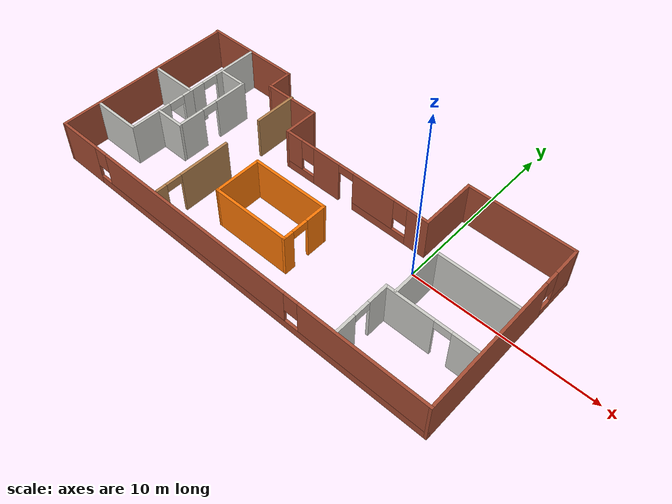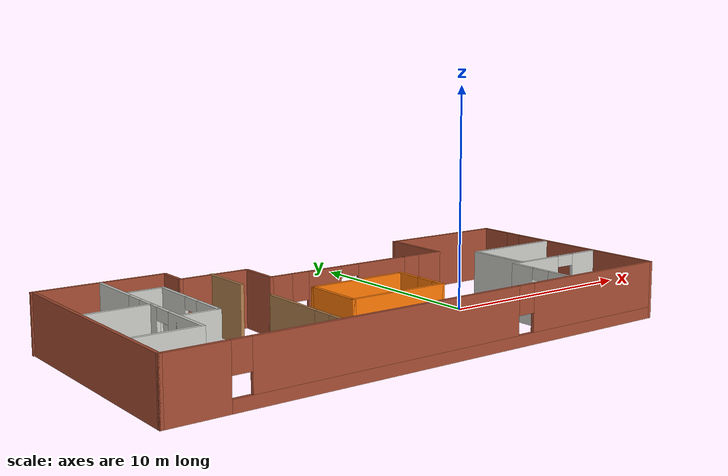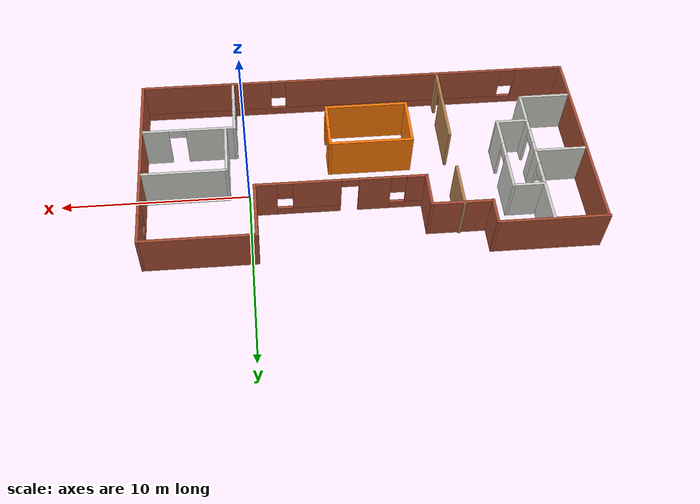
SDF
<?xml version='1.0'?>
<sdf version='1.6'>
  <model name='Building'>
    <pose frame=''>-6.15049 -0.832939 0 0 -0 0</pose>
    <link name='Wall_1'>
      <collision name='Wall_1_Collision'>
        <geometry>
          <box>
            <size>10.5 0.15 2.5</size>
          </box>
        </geometry>
        <pose frame=''>0 0 1.25 0 -0 0</pose>
      </collision>
      <visual name='Wall_1_Visual'>
        <pose frame=''>0 0 1.25 0 -0 0</pose>
        <geometry>
          <box>
            <size>10.5 0.15 2.5</size>
          </box>
        </geometry>
        <material>
          <script>
            <uri>file://media/materials/scripts/gazebo.material</uri>
            <name>Gazebo/Bricks</name>
          </script>
          <ambient>1 1 1 1</ambient>
        </material>
        <meta>
          <layer>0</layer>
        </meta>
      </visual>
      <pose frame=''>-11.65 -0.05 0 0 0 -1.5708</pose>
    </link>
    <link name='Wall_10'>
      <collision name='Wall_10_Collision'>
        <geometry>
          <box>
            <size>3.25 0.15 2.5</size>
          </box>
        </geometry>
        <pose frame=''>0 0 1.25 0 -0 0</pose>
      </collision>
      <visual name='Wall_10_Visual'>
        <pose frame=''>0 0 1.25 0 -0 0</pose>
        <geometry>
          <box>
            <size>3.25 0.15 2.5</size>
          </box>
        </geometry>
        <material>
          <script>
            <uri>file://media/materials/scripts/gazebo.material</uri>
            <name>Gazebo/Bricks</name>
          </script>
          <ambient>1 1 1 1</ambient>
        </material>
        <meta>
          <layer>0</layer>
        </meta>
      </visual>
      <pose frame=''>-4.55 3.875 0 0 -0 3.14159</pose>
    </link>
    <link name='Wall_11'>
      <collision name='Wall_11_Collision'>
        <geometry>
          <box>
            <size>1.5 0.15 2.5</size>
          </box>
        </geometry>
        <pose frame=''>0 0 1.25 0 -0 0</pose>
      </collision>
      <visual name='Wall_11_Visual'>
        <pose frame=''>0 0 1.25 0 -0 0</pose>
        <geometry>
          <box>
            <size>1.5 0.15 2.5</size>
          </box>
        </geometry>
        <material>
          <script>
            <uri>file://media/materials/scripts/gazebo.material</uri>
            <name>Gazebo/Bricks</name>
          </script>
          <ambient>1 1 1 1</ambient>
        </material>
        <meta>
          <layer>0</layer>
        </meta>
      </visual>
      <pose frame=''>-6.1 4.55 0 0 -0 1.5708</pose>
    </link>
    <link name='Wall_14'>
      <collision name='Wall_14_Collision'>
        <geometry>
          <box>
            <size>5.75 0.15 2.5</size>
          </box>
        </geometry>
        <pose frame=''>0 0 1.25 0 -0 0</pose>
      </collision>
      <visual name='Wall_14_Visual'>
        <pose frame=''>0 0 1.25 0 -0 0</pose>
        <geometry>
          <box>
            <size>5.75 0.15 2.5</size>
          </box>
        </geometry>
        <material>
          <script>
            <uri>file://media/materials/scripts/gazebo.material</uri>
            <name>Gazebo/Bricks</name>
          </script>
          <ambient>1 1 1 1</ambient>
        </material>
        <meta>
          <layer>0</layer>
        </meta>
      </visual>
      <pose frame=''>-8.9 5.225 0 0 -0 3.14159</pose>
    </link>
    <link name='Wall_16'>
      <pose frame=''>6.75486 -3.54398 0 0 -0 1.5708</pose>
      <visual name='Wall_16_Visual_0'>
        <pose frame=''>-1.06347 0 1.25 0 -0 0</pose>
        <geometry>
          <box>
            <size>1.12307 0.15 2.5</size>
          </box>
        </geometry>
        <material>
          <script>
            <uri>file://media/materials/scripts/gazebo.material</uri>
            <name>Gazebo/CeilingTiled</name>
          </script>
          <ambient>1 0.764706 0.305882 1</ambient>
        </material>
        <meta>
          <layer>0</layer>
        </meta>
      </visual>
      <collision name='Wall_16_Collision_0'>
        <geometry>
          <box>
            <size>1.12307 0.15 2.5</size>
          </box>
        </geometry>
        <pose frame=''>-1.06347 0 1.25 0 -0 0</pose>
      </collision>
      <visual name='Wall_16_Visual_1'>
        <pose frame=''>1.01154 0 1.25 0 -0 0</pose>
        <geometry>
          <box>
            <size>1.22693 0.15 2.5</size>
          </box>
        </geometry>
        <material>
          <script>
            <uri>file://media/materials/scripts/gazebo.material</uri>
            <name>Gazebo/CeilingTiled</name>
          </script>
          <ambient>1 0.764706 0.305882 1</ambient>
        </material>
        <meta>
          <layer>0</layer>
        </meta>
      </visual>
      <collision name='Wall_16_Collision_1'>
        <geometry>
          <box>
            <size>1.22693 0.15 2.5</size>
          </box>
        </geometry>
        <pose frame=''>1.01154 0 1.25 0 -0 0</pose>
      </collision>
      <visual name='Wall_16_Visual_2'>
        <pose frame=''>-0.05193 0 2.25 0 -0 0</pose>
        <geometry>
          <box>
            <size>0.9 0.15 0.5</size>
          </box>
        </geometry>
        <material>
          <script>
            <uri>file://media/materials/scripts/gazebo.material</uri>
            <name>Gazebo/CeilingTiled</name>
          </script>
          <ambient>1 0.764706 0.305882 1</ambient>
        </material>
        <meta>
          <layer>0</layer>
        </meta>
      </visual>
      <collision name='Wall_16_Collision_2'>
        <geometry>
          <box>
            <size>0.9 0.15 0.5</size>
          </box>
        </geometry>
        <pose frame=''>-0.05193 0 2.25 0 -0 0</pose>
      </collision>
    </link>
    <link name='Wall_17'>
      <pose frame=''>9.17986 -1.99398 0 0 -0 0</pose>
      <visual name='Wall_17_Visual_0'>
        <pose frame=''>-1.16268 0 1.25 0 -0 0</pose>
        <geometry>
          <box>
            <size>2.67464 0.15 2.5</size>
          </box>
        </geometry>
        <material>
          <script>
            <uri>file://media/materials/scripts/gazebo.material</uri>
            <name>Gazebo/CeilingTiled</name>
          </script>
          <ambient>1 0.764706 0.305882 1</ambient>
        </material>
        <meta>
          <layer>0</layer>
        </meta>
      </visual>
      <collision name='Wall_17_Collision_0'>
        <geometry>
          <box>
            <size>2.67464 0.15 2.5</size>
          </box>
        </geometry>
        <pose frame=''>-1.16268 0 1.25 0 -0 0</pose>
      </collision>
      <visual name='Wall_17_Visual_1'>
        <pose frame=''>1.78732 0 1.25 0 -0 0</pose>
        <geometry>
          <box>
            <size>1.42536 0.15 2.5</size>
          </box>
        </geometry>
        <material>
          <script>
            <uri>file://media/materials/scripts/gazebo.material</uri>
            <name>Gazebo/CeilingTiled</name>
          </script>
          <ambient>1 0.764706 0.305882 1</ambient>
        </material>
        <meta>
          <layer>0</layer>
        </meta>
      </visual>
      <collision name='Wall_17_Collision_1'>
        <geometry>
          <box>
            <size>1.42536 0.15 2.5</size>
          </box>
        </geometry>
        <pose frame=''>1.78732 0 1.25 0 -0 0</pose>
      </collision>
      <visual name='Wall_17_Visual_2'>
        <pose frame=''>0.624643 0 2.25 0 -0 0</pose>
        <geometry>
          <box>
            <size>0.9 0.15 0.5</size>
          </box>
        </geometry>
        <material>
          <script>
            <uri>file://media/materials/scripts/gazebo.material</uri>
            <name>Gazebo/CeilingTiled</name>
          </script>
          <ambient>1 0.764706 0.305882 1</ambient>
        </material>
        <meta>
          <layer>0</layer>
        </meta>
      </visual>
      <collision name='Wall_17_Collision_2'>
        <geometry>
          <box>
            <size>0.9 0.15 0.5</size>
          </box>
        </geometry>
        <pose frame=''>0.624643 0 2.25 0 -0 0</pose>
      </collision>
    </link>
    <link name='Wall_19'>
      <collision name='Wall_19_Collision'>
        <geometry>
          <box>
            <size>3 0.15 2.5</size>
          </box>
        </geometry>
        <pose frame=''>0 0 1.25 0 -0 0</pose>
      </collision>
      <visual name='Wall_19_Visual'>
        <pose frame=''>0 0 1.25 0 -0 0</pose>
        <geometry>
          <box>
            <size>3 0.15 2.5</size>
          </box>
        </geometry>
        <material>
          <script>
            <uri>file://media/materials/scripts/gazebo.material</uri>
            <name>Gazebo/CeilingTiled</name>
          </script>
          <ambient>1 0.764706 0.305882 1</ambient>
        </material>
        <meta>
          <layer>0</layer>
        </meta>
      </visual>
      <pose frame=''>7.23638 -0.51233 0 0 -0 1.5708</pose>
    </link>
    <link name='Wall_2'>
      <pose frame=''>0.025 -5.225 0 0 -0 0</pose>
      <visual name='Wall_2_Visual_0'>
        <pose frame=''>-10.4412 0 1.25 0 -0 0</pose>
        <geometry>
          <box>
            <size>2.61764 0.15 2.5</size>
          </box>
        </geometry>
        <material>
          <script>
            <uri>file://media/materials/scripts/gazebo.material</uri>
            <name>Gazebo/Bricks</name>
          </script>
          <ambient>1 1 1 1</ambient>
        </material>
        <meta>
          <layer>0</layer>
        </meta>
      </visual>
      <collision name='Wall_2_Collision_0'>
        <geometry>
          <box>
            <size>2.61764 0.15 2.5</size>
          </box>
        </geometry>
        <pose frame=''>-10.4412 0 1.25 0 -0 0</pose>
      </collision>
      <visual name='Wall_2_Visual_1'>
        <pose frame=''>1.30882 0 0.25 0 -0 0</pose>
        <geometry>
          <box>
            <size>20.8824 0.15 0.5</size>
          </box>
        </geometry>
        <material>
          <script>
            <uri>file://media/materials/scripts/gazebo.material</uri>
            <name>Gazebo/Bricks</name>
          </script>
          <ambient>1 1 1 1</ambient>
        </material>
        <meta>
          <layer>0</layer>
        </meta>
      </visual>
      <collision name='Wall_2_Collision_1'>
        <geometry>
          <box>
            <size>20.8824 0.15 0.5</size>
          </box>
        </geometry>
        <pose frame=''>1.30882 0 0.25 0 -0 0</pose>
      </collision>
      <visual name='Wall_2_Visual_2'>
        <pose frame=''>-2.25856 0 1.5 0 -0 0</pose>
        <geometry>
          <box>
            <size>12.1476 0.15 2</size>
          </box>
        </geometry>
        <material>
          <script>
            <uri>file://media/materials/scripts/gazebo.material</uri>
            <name>Gazebo/Bricks</name>
          </script>
          <ambient>1 1 1 1</ambient>
        </material>
        <meta>
          <layer>0</layer>
        </meta>
      </visual>
      <collision name='Wall_2_Collision_2'>
        <geometry>
          <box>
            <size>12.1476 0.15 2</size>
          </box>
        </geometry>
        <pose frame=''>-2.25856 0 1.5 0 -0 0</pose>
      </collision>
      <visual name='Wall_2_Visual_3'>
        <pose frame=''>8.18262 0 1.5 0 -0 0</pose>
        <geometry>
          <box>
            <size>7.13476 0.15 2</size>
          </box>
        </geometry>
        <material>
          <script>
            <uri>file://media/materials/scripts/gazebo.material</uri>
            <name>Gazebo/Bricks</name>
          </script>
          <ambient>1 1 1 1</ambient>
        </material>
        <meta>
          <layer>0</layer>
        </meta>
      </visual>
      <collision name='Wall_2_Collision_3'>
        <geometry>
          <box>
            <size>7.13476 0.15 2</size>
          </box>
        </geometry>
        <pose frame=''>8.18262 0 1.5 0 -0 0</pose>
      </collision>
      <visual name='Wall_2_Visual_4'>
        <pose frame=''>-8.73236 0 1.9 0 -0 0</pose>
        <geometry>
          <box>
            <size>0.8 0.15 1.2</size>
          </box>
        </geometry>
        <material>
          <script>
            <uri>file://media/materials/scripts/gazebo.material</uri>
            <name>Gazebo/Bricks</name>
          </script>
          <ambient>1 1 1 1</ambient>
        </material>
        <meta>
          <layer>0</layer>
        </meta>
      </visual>
      <collision name='Wall_2_Collision_4'>
        <geometry>
          <box>
            <size>0.8 0.15 1.2</size>
          </box>
        </geometry>
        <pose frame=''>-8.73236 0 1.9 0 -0 0</pose>
      </collision>
      <visual name='Wall_2_Visual_5'>
        <pose frame=''>4.21524 0 1.9 0 -0 0</pose>
        <geometry>
          <box>
            <size>0.8 0.15 1.2</size>
          </box>
        </geometry>
        <material>
          <script>
            <uri>file://media/materials/scripts/gazebo.material</uri>
            <name>Gazebo/Bricks</name>
          </script>
          <ambient>1 1 1 1</ambient>
        </material>
        <meta>
          <layer>0</layer>
        </meta>
      </visual>
      <collision name='Wall_2_Collision_5'>
        <geometry>
          <box>
            <size>0.8 0.15 1.2</size>
          </box>
        </geometry>
        <pose frame=''>4.21524 0 1.9 0 -0 0</pose>
      </collision>
    </link>
    <link name='Wall_20'>
      <collision name='Wall_20_Collision'>
        <geometry>
          <box>
            <size>4.5 0.15 2.5</size>
          </box>
        </geometry>
        <pose frame=''>0 0 1.25 0 -0 0</pose>
      </collision>
      <visual name='Wall_20_Visual'>
        <pose frame=''>0 0 1.25 0 -0 0</pose>
        <geometry>
          <box>
            <size>4.5 0.15 2.5</size>
          </box>
        </geometry>
        <material>
          <script>
            <uri>file://media/materials/scripts/gazebo.material</uri>
            <name>Gazebo/CeilingTiled</name>
          </script>
          <ambient>1 0.764706 0.305882 1</ambient>
        </material>
        <meta>
          <layer>0</layer>
        </meta>
      </visual>
      <pose frame=''>9.41138 0.91267 0 0 -0 0</pose>
    </link>
    <link name='Wall_23'>
      <pose frame=''>-8.92137 2.95 0 0 0 -1.5708</pose>
      <visual name='Wall_23_Visual_0'>
        <pose frame=''>-0.912679 0 1.25 0 -0 0</pose>
        <geometry>
          <box>
            <size>2.67464 0.15 2.5</size>
          </box>
        </geometry>
        <material>
          <script>
            <uri>file://media/materials/scripts/gazebo.material</uri>
            <name>Gazebo/CeilingTiled</name>
          </script>
          <ambient>0.435294 0.796078 0.67451 1</ambient>
        </material>
        <meta>
          <layer>0</layer>
        </meta>
      </visual>
      <collision name='Wall_23_Collision_0'>
        <geometry>
          <box>
            <size>2.67464 0.15 2.5</size>
          </box>
        </geometry>
        <pose frame=''>-0.912679 0 1.25 0 -0 0</pose>
      </collision>
      <visual name='Wall_23_Visual_1'>
        <pose frame=''>1.78732 0 1.25 0 -0 0</pose>
        <geometry>
          <box>
            <size>0.925357 0.15 2.5</size>
          </box>
        </geometry>
        <material>
          <script>
            <uri>file://media/materials/scripts/gazebo.material</uri>
            <name>Gazebo/CeilingTiled</name>
          </script>
          <ambient>0.435294 0.796078 0.67451 1</ambient>
        </material>
        <meta>
          <layer>0</layer>
        </meta>
      </visual>
      <collision name='Wall_23_Collision_1'>
        <geometry>
          <box>
            <size>0.925357 0.15 2.5</size>
          </box>
        </geometry>
        <pose frame=''>1.78732 0 1.25 0 -0 0</pose>
      </collision>
      <visual name='Wall_23_Visual_2'>
        <pose frame=''>0.874643 0 2.25 0 -0 0</pose>
        <geometry>
          <box>
            <size>0.9 0.15 0.5</size>
          </box>
        </geometry>
        <material>
          <script>
            <uri>file://media/materials/scripts/gazebo.material</uri>
            <name>Gazebo/CeilingTiled</name>
          </script>
          <ambient>0.435294 0.796078 0.67451 1</ambient>
        </material>
        <meta>
          <layer>0</layer>
        </meta>
      </visual>
      <collision name='Wall_23_Collision_2'>
        <geometry>
          <box>
            <size>0.9 0.15 0.5</size>
          </box>
        </geometry>
        <pose frame=''>0.874643 0 2.25 0 -0 0</pose>
      </collision>
    </link>
    <link name='Wall_24'>
      <collision name='Wall_24_Collision'>
        <geometry>
          <box>
            <size>2.75 0.15 2.5</size>
          </box>
        </geometry>
        <pose frame=''>0 0 1.25 0 -0 0</pose>
      </collision>
      <visual name='Wall_24_Visual'>
        <pose frame=''>0 0 1.25 0 -0 0</pose>
        <geometry>
          <box>
            <size>2.75 0.15 2.5</size>
          </box>
        </geometry>
        <material>
          <script>
            <uri>file://media/materials/scripts/gazebo.material</uri>
            <name>Gazebo/CeilingTiled</name>
          </script>
          <ambient>0.435294 0.796078 0.67451 1</ambient>
        </material>
        <meta>
          <layer>0</layer>
        </meta>
      </visual>
      <pose frame=''>-10.2214 0.775 0 0 -0 3.14159</pose>
    </link>
    <link name='Wall_26'>
      <pose frame=''>-8.92137 -1.15 0 0 0 -1.5708</pose>
      <visual name='Wall_26_Visual_0'>
        <pose frame=''>-1.68738 0 1.25 0 -0 0</pose>
        <geometry>
          <box>
            <size>0.62525 0.15 2.5</size>
          </box>
        </geometry>
        <material>
          <script>
            <uri>file://media/materials/scripts/gazebo.material</uri>
            <name>Gazebo/CeilingTiled</name>
          </script>
          <ambient>0.435294 0.796078 0.67451 1</ambient>
        </material>
        <meta>
          <layer>0</layer>
        </meta>
      </visual>
      <collision name='Wall_26_Collision_0'>
        <geometry>
          <box>
            <size>0.62525 0.15 2.5</size>
          </box>
        </geometry>
        <pose frame=''>-1.68738 0 1.25 0 -0 0</pose>
      </collision>
      <visual name='Wall_26_Visual_1'>
        <pose frame=''>0.762625 0 1.25 0 -0 0</pose>
        <geometry>
          <box>
            <size>2.47475 0.15 2.5</size>
          </box>
        </geometry>
        <material>
          <script>
            <uri>file://media/materials/scripts/gazebo.material</uri>
            <name>Gazebo/CeilingTiled</name>
          </script>
          <ambient>0.435294 0.796078 0.67451 1</ambient>
        </material>
        <meta>
          <layer>0</layer>
        </meta>
      </visual>
      <collision name='Wall_26_Collision_1'>
        <geometry>
          <box>
            <size>2.47475 0.15 2.5</size>
          </box>
        </geometry>
        <pose frame=''>0.762625 0 1.25 0 -0 0</pose>
      </collision>
      <visual name='Wall_26_Visual_2'>
        <pose frame=''>-0.92475 0 2.25 0 -0 0</pose>
        <geometry>
          <box>
            <size>0.9 0.15 0.5</size>
          </box>
        </geometry>
        <material>
          <script>
            <uri>file://media/materials/scripts/gazebo.material</uri>
            <name>Gazebo/CeilingTiled</name>
          </script>
          <ambient>0.435294 0.796078 0.67451 1</ambient>
        </material>
        <meta>
          <layer>0</layer>
        </meta>
      </visual>
      <collision name='Wall_26_Collision_2'>
        <geometry>
          <box>
            <size>0.9 0.15 0.5</size>
          </box>
        </geometry>
        <pose frame=''>-0.92475 0 2.25 0 -0 0</pose>
      </collision>
    </link>
    <link name='Wall_27'>
      <collision name='Wall_27_Collision'>
        <geometry>
          <box>
            <size>2.75 0.15 2.5</size>
          </box>
        </geometry>
        <pose frame=''>0 0 1.25 0 -0 0</pose>
      </collision>
      <visual name='Wall_27_Visual'>
        <pose frame=''>0 0 1.25 0 -0 0</pose>
        <geometry>
          <box>
            <size>2.75 0.15 2.5</size>
          </box>
        </geometry>
        <material>
          <script>
            <uri>file://media/materials/scripts/gazebo.material</uri>
            <name>Gazebo/CeilingTiled</name>
          </script>
          <ambient>0.435294 0.796078 0.67451 1</ambient>
        </material>
        <meta>
          <layer>0</layer>
        </meta>
      </visual>
      <pose frame=''>-10.2214 -3.075 0 0 -0 3.14159</pose>
    </link>
    <link name='Wall_29'>
      <collision name='Wall_29_Collision'>
        <geometry>
          <box>
            <size>1.75 0.15 2.5</size>
          </box>
        </geometry>
        <pose frame=''>0 0 1.25 0 -0 0</pose>
      </collision>
      <visual name='Wall_29_Visual'>
        <pose frame=''>0 0 1.25 0 -0 0</pose>
        <geometry>
          <box>
            <size>1.75 0.15 2.5</size>
          </box>
        </geometry>
        <material>
          <script>
            <uri>file://media/materials/scripts/gazebo.material</uri>
            <name>Gazebo/CeilingTiled</name>
          </script>
          <ambient>0.435294 0.796078 0.67451 1</ambient>
        </material>
        <meta>
          <layer>0</layer>
        </meta>
      </visual>
      <pose frame=''>-8.12137 2.9849 0 0 -0 0</pose>
    </link>
    <link name='Wall_3'>
      <pose frame=''>11.7 -0.05 0 0 -0 1.5708</pose>
      <visual name='Wall_3_Visual_0'>
        <pose frame=''>-1.2273 0 1.25 0 -0 0</pose>
        <geometry>
          <box>
            <size>8.04541 0.15 2.5</size>
          </box>
        </geometry>
        <material>
          <script>
            <uri>file://media/materials/scripts/gazebo.material</uri>
            <name>Gazebo/Bricks</name>
          </script>
          <ambient>1 1 1 1</ambient>
        </material>
        <meta>
          <layer>0</layer>
        </meta>
      </visual>
      <collision name='Wall_3_Collision_0'>
        <geometry>
          <box>
            <size>8.04541 0.15 2.5</size>
          </box>
        </geometry>
        <pose frame=''>-1.2273 0 1.25 0 -0 0</pose>
      </collision>
      <visual name='Wall_3_Visual_1'>
        <pose frame=''>4.0227 0 0.25 0 -0 0</pose>
        <geometry>
          <box>
            <size>2.45459 0.15 0.5</size>
          </box>
        </geometry>
        <material>
          <script>
            <uri>file://media/materials/scripts/gazebo.material</uri>
            <name>Gazebo/Bricks</name>
          </script>
          <ambient>1 1 1 1</ambient>
        </material>
        <meta>
          <layer>0</layer>
        </meta>
      </visual>
      <collision name='Wall_3_Collision_1'>
        <geometry>
          <box>
            <size>2.45459 0.15 0.5</size>
          </box>
        </geometry>
        <pose frame=''>4.0227 0 0.25 0 -0 0</pose>
      </collision>
      <visual name='Wall_3_Visual_2'>
        <pose frame=''>4.4227 0 1.5 0 -0 0</pose>
        <geometry>
          <box>
            <size>1.65459 0.15 2</size>
          </box>
        </geometry>
        <material>
          <script>
            <uri>file://media/materials/scripts/gazebo.material</uri>
            <name>Gazebo/Bricks</name>
          </script>
          <ambient>1 1 1 1</ambient>
        </material>
        <meta>
          <layer>0</layer>
        </meta>
      </visual>
      <collision name='Wall_3_Collision_2'>
        <geometry>
          <box>
            <size>1.65459 0.15 2</size>
          </box>
        </geometry>
        <pose frame=''>4.4227 0 1.5 0 -0 0</pose>
      </collision>
      <visual name='Wall_3_Visual_3'>
        <pose frame=''>3.19541 0 1.9 0 -0 0</pose>
        <geometry>
          <box>
            <size>0.8 0.15 1.2</size>
          </box>
        </geometry>
        <material>
          <script>
            <uri>file://media/materials/scripts/gazebo.material</uri>
            <name>Gazebo/Bricks</name>
          </script>
          <ambient>1 1 1 1</ambient>
        </material>
        <meta>
          <layer>0</layer>
        </meta>
      </visual>
      <collision name='Wall_3_Collision_3'>
        <geometry>
          <box>
            <size>0.8 0.15 1.2</size>
          </box>
        </geometry>
        <pose frame=''>3.19541 0 1.9 0 -0 0</pose>
      </collision>
    </link>
    <link name='Wall_30'>
      <pose frame=''>-7.32137 0.8099 0 0 0 -1.5708</pose>
      <visual name='Wall_30_Visual_0'>
        <pose frame=''>-1.26045 0 1.25 0 -0 0</pose>
        <geometry>
          <box>
            <size>1.97911 0.15 2.5</size>
          </box>
        </geometry>
        <material>
          <script>
            <uri>file://media/materials/scripts/gazebo.material</uri>
            <name>Gazebo/CeilingTiled</name>
          </script>
          <ambient>0.435294 0.796078 0.67451 1</ambient>
        </material>
        <meta>
          <layer>0</layer>
        </meta>
      </visual>
      <collision name='Wall_30_Collision_0'>
        <geometry>
          <box>
            <size>1.97911 0.15 2.5</size>
          </box>
        </geometry>
        <pose frame=''>-1.26045 0 1.25 0 -0 0</pose>
      </collision>
      <visual name='Wall_30_Visual_1'>
        <pose frame=''>1.43955 0 1.25 0 -0 0</pose>
        <geometry>
          <box>
            <size>1.62089 0.15 2.5</size>
          </box>
        </geometry>
        <material>
          <script>
            <uri>file://media/materials/scripts/gazebo.material</uri>
            <name>Gazebo/CeilingTiled</name>
          </script>
          <ambient>0.435294 0.796078 0.67451 1</ambient>
        </material>
        <meta>
          <layer>0</layer>
        </meta>
      </visual>
      <collision name='Wall_30_Collision_1'>
        <geometry>
          <box>
            <size>1.62089 0.15 2.5</size>
          </box>
        </geometry>
        <pose frame=''>1.43955 0 1.25 0 -0 0</pose>
      </collision>
      <visual name='Wall_30_Visual_2'>
        <pose frame=''>0.17911 0 2.25 0 -0 0</pose>
        <geometry>
          <box>
            <size>0.9 0.15 0.5</size>
          </box>
        </geometry>
        <material>
          <script>
            <uri>file://media/materials/scripts/gazebo.material</uri>
            <name>Gazebo/CeilingTiled</name>
          </script>
          <ambient>0.435294 0.796078 0.67451 1</ambient>
        </material>
        <meta>
          <layer>0</layer>
        </meta>
      </visual>
      <collision name='Wall_30_Collision_2'>
        <geometry>
          <box>
            <size>0.9 0.15 0.5</size>
          </box>
        </geometry>
        <pose frame=''>0.17911 0 2.25 0 -0 0</pose>
      </collision>
    </link>
    <link name='Wall_35'>
      <collision name='Wall_35_Collision'>
        <geometry>
          <box>
            <size>1.75 0.15 2.5</size>
          </box>
        </geometry>
        <pose frame=''>0 0 1.25 0 -0 0</pose>
      </collision>
      <visual name='Wall_35_Visual'>
        <pose frame=''>0 0 1.25 0 -0 0</pose>
        <geometry>
          <box>
            <size>1.75 0.15 2.5</size>
          </box>
        </geometry>
        <material>
          <script>
            <uri>file://media/materials/scripts/gazebo.material</uri>
            <name>Gazebo/CeilingTiled</name>
          </script>
          <ambient>0.435294 0.796078 0.67451 1</ambient>
        </material>
        <meta>
          <layer>0</layer>
        </meta>
      </visual>
      <pose frame=''>-8.12137 -1.3651 0 0 -0 3.14159</pose>
    </link>
    <link name='Wall_38'>
      <collision name='Wall_38_Collision'>
        <geometry>
          <box>
            <size>2.75 0.15 2.5</size>
          </box>
        </geometry>
        <pose frame=''>0 0 1.25 0 -0 0</pose>
      </collision>
      <visual name='Wall_38_Visual'>
        <pose frame=''>0 0 1.25 0 -0 0</pose>
        <geometry>
          <box>
            <size>2.75 0.15 2.5</size>
          </box>
        </geometry>
        <material>
          <script>
            <uri>file://media/materials/scripts/gazebo.material</uri>
            <name>Gazebo/Grey</name>
          </script>
          <ambient>0.996078 0.47451 0.0196078 1</ambient>
        </material>
        <meta>
          <layer>0</layer>
        </meta>
      </visual>
      <pose frame=''>-2.60851 -1.79306 0 0 0 -1.5708</pose>
    </link>
    <link name='Wall_39'>
      <collision name='Wall_39_Collision'>
        <geometry>
          <box>
            <size>4.5 0.15 2.5</size>
          </box>
        </geometry>
        <pose frame=''>0 0 1.25 0 -0 0</pose>
      </collision>
      <visual name='Wall_39_Visual'>
        <pose frame=''>0 0 1.25 0 -0 0</pose>
        <geometry>
          <box>
            <size>4.5 0.15 2.5</size>
          </box>
        </geometry>
        <material>
          <script>
            <uri>file://media/materials/scripts/gazebo.material</uri>
            <name>Gazebo/Grey</name>
          </script>
          <ambient>0.996078 0.47451 0.0196078 1</ambient>
        </material>
        <meta>
          <layer>0</layer>
        </meta>
      </visual>
      <pose frame=''>-0.433507 -3.09306 0 0 -0 0</pose>
    </link>
    <link name='Wall_40'>
      <pose frame=''>1.74149 -1.79306 0 0 -0 1.5708</pose>
      <visual name='Wall_40_Visual_0'>
        <pose frame=''>-1.06504 0 1.25 0 -0 0</pose>
        <geometry>
          <box>
            <size>0.619925 0.15 2.5</size>
          </box>
        </geometry>
        <material>
          <script>
            <uri>file://media/materials/scripts/gazebo.material</uri>
            <name>Gazebo/Grey</name>
          </script>
          <ambient>0.996078 0.47451 0.0196078 1</ambient>
        </material>
        <meta>
          <layer>0</layer>
        </meta>
      </visual>
      <collision name='Wall_40_Collision_0'>
        <geometry>
          <box>
            <size>0.619925 0.15 2.5</size>
          </box>
        </geometry>
        <pose frame=''>-1.06504 0 1.25 0 -0 0</pose>
      </collision>
      <visual name='Wall_40_Visual_1'>
        <pose frame=''>0.759962 0 1.25 0 -0 0</pose>
        <geometry>
          <box>
            <size>1.23008 0.15 2.5</size>
          </box>
        </geometry>
        <material>
          <script>
            <uri>file://media/materials/scripts/gazebo.material</uri>
            <name>Gazebo/Grey</name>
          </script>
          <ambient>0.996078 0.47451 0.0196078 1</ambient>
        </material>
        <meta>
          <layer>0</layer>
        </meta>
      </visual>
      <collision name='Wall_40_Collision_1'>
        <geometry>
          <box>
            <size>1.23008 0.15 2.5</size>
          </box>
        </geometry>
        <pose frame=''>0.759962 0 1.25 0 -0 0</pose>
      </collision>
      <visual name='Wall_40_Visual_2'>
        <pose frame=''>-0.305075 0 2.25 0 -0 0</pose>
        <geometry>
          <box>
            <size>0.9 0.15 0.5</size>
          </box>
        </geometry>
        <material>
          <script>
            <uri>file://media/materials/scripts/gazebo.material</uri>
            <name>Gazebo/Grey</name>
          </script>
          <ambient>0.996078 0.47451 0.0196078 1</ambient>
        </material>
        <meta>
          <layer>0</layer>
        </meta>
      </visual>
      <collision name='Wall_40_Collision_2'>
        <geometry>
          <box>
            <size>0.9 0.15 0.5</size>
          </box>
        </geometry>
        <pose frame=''>-0.305075 0 2.25 0 -0 0</pose>
      </collision>
    </link>
    <link name='Wall_41'>
      <collision name='Wall_41_Collision'>
        <geometry>
          <box>
            <size>4.5 0.15 2.5</size>
          </box>
        </geometry>
        <pose frame=''>0 0 1.25 0 -0 0</pose>
      </collision>
      <visual name='Wall_41_Visual'>
        <pose frame=''>0 0 1.25 0 -0 0</pose>
        <geometry>
          <box>
            <size>4.5 0.15 2.5</size>
          </box>
        </geometry>
        <material>
          <script>
            <uri>file://media/materials/scripts/gazebo.material</uri>
            <name>Gazebo/Grey</name>
          </script>
          <ambient>0.996078 0.47451 0.0196078 1</ambient>
        </material>
        <meta>
          <layer>0</layer>
        </meta>
      </visual>
      <pose frame=''>-0.433507 -0.493061 0 0 -0 3.14159</pose>
    </link>
    <link name='Wall_43'>
      <collision name='Wall_43_Collision'>
        <geometry>
          <box>
            <size>2.5 0.15 2.5</size>
          </box>
        </geometry>
        <pose frame=''>0 0 1.25 0 -0 0</pose>
      </collision>
      <visual name='Wall_43_Visual'>
        <pose frame=''>0 0 1.25 0 -0 0</pose>
        <geometry>
          <box>
            <size>2.5 0.15 2.5</size>
          </box>
        </geometry>
        <material>
          <script>
            <uri>file://media/materials/scripts/gazebo.material</uri>
            <name>Gazebo/Wood</name>
          </script>
          <ambient>1 1 1 1</ambient>
        </material>
        <meta>
          <layer>0</layer>
        </meta>
      </visual>
      <pose frame=''>-4.64117 2.77294 0 0 0 -1.5708</pose>
    </link>
    <link name='Wall_45'>
      <pose frame=''>-4.64117 -2.88177 0 0 0 -1.5708</pose>
      <visual name='Wall_45_Visual_0'>
        <pose frame=''>-0.752171 0 1.25 0 -0 0</pose>
        <geometry>
          <box>
            <size>2.99566 0.15 2.5</size>
          </box>
        </geometry>
        <material>
          <script>
            <uri>file://media/materials/scripts/gazebo.material</uri>
            <name>Gazebo/Wood</name>
          </script>
          <ambient>1 1 1 1</ambient>
        </material>
        <meta>
          <layer>0</layer>
        </meta>
      </visual>
      <collision name='Wall_45_Collision_0'>
        <geometry>
          <box>
            <size>2.99566 0.15 2.5</size>
          </box>
        </geometry>
        <pose frame=''>-0.752171 0 1.25 0 -0 0</pose>
      </collision>
      <visual name='Wall_45_Visual_1'>
        <pose frame=''>1.94783 0 1.25 0 -0 0</pose>
        <geometry>
          <box>
            <size>0.604343 0.15 2.5</size>
          </box>
        </geometry>
        <material>
          <script>
            <uri>file://media/materials/scripts/gazebo.material</uri>
            <name>Gazebo/Wood</name>
          </script>
          <ambient>1 1 1 1</ambient>
        </material>
        <meta>
          <layer>0</layer>
        </meta>
      </visual>
      <collision name='Wall_45_Collision_1'>
        <geometry>
          <box>
            <size>0.604343 0.15 2.5</size>
          </box>
        </geometry>
        <pose frame=''>1.94783 0 1.25 0 -0 0</pose>
      </collision>
      <visual name='Wall_45_Visual_2'>
        <pose frame=''>1.19566 0 2.25 0 -0 0</pose>
        <geometry>
          <box>
            <size>0.9 0.15 0.5</size>
          </box>
        </geometry>
        <material>
          <script>
            <uri>file://media/materials/scripts/gazebo.material</uri>
            <name>Gazebo/Wood</name>
          </script>
          <ambient>1 1 1 1</ambient>
        </material>
        <meta>
          <layer>0</layer>
        </meta>
      </visual>
      <collision name='Wall_45_Collision_2'>
        <geometry>
          <box>
            <size>0.9 0.15 0.5</size>
          </box>
        </geometry>
        <pose frame=''>1.19566 0 2.25 0 -0 0</pose>
      </collision>
    </link>
    <link name='Wall_6'>
      <collision name='Wall_6_Collision'>
        <geometry>
          <box>
            <size>6 0.15 2.5</size>
          </box>
        </geometry>
        <pose frame=''>0 0 1.25 0 -0 0</pose>
      </collision>
      <visual name='Wall_6_Visual'>
        <pose frame=''>0 0 1.25 0 -0 0</pose>
        <geometry>
          <box>
            <size>6 0.15 2.5</size>
          </box>
        </geometry>
        <material>
          <script>
            <uri>file://media/materials/scripts/gazebo.material</uri>
            <name>Gazebo/Bricks</name>
          </script>
          <ambient>1 1 1 1</ambient>
        </material>
        <meta>
          <layer>0</layer>
        </meta>
      </visual>
      <pose frame=''>8.775 5.125 0 0 -0 3.14159</pose>
    </link>
    <link name='Wall_7'>
      <collision name='Wall_7_Collision'>
        <geometry>
          <box>
            <size>3.25 0.15 2.5</size>
          </box>
        </geometry>
        <pose frame=''>0 0 1.25 0 -0 0</pose>
      </collision>
      <visual name='Wall_7_Visual'>
        <pose frame=''>0 0 1.25 0 -0 0</pose>
        <geometry>
          <box>
            <size>3.25 0.15 2.5</size>
          </box>
        </geometry>
        <material>
          <script>
            <uri>file://media/materials/scripts/gazebo.material</uri>
            <name>Gazebo/Bricks</name>
          </script>
          <ambient>1 1 1 1</ambient>
        </material>
        <meta>
          <layer>0</layer>
        </meta>
      </visual>
      <pose frame=''>5.85 3.575 0 0 0 -1.5708</pose>
    </link>
    <link name='Wall_8'>
      <pose frame=''>1.425 2.025 0 0 -0 3.14159</pose>
      <visual name='Wall_8_Visual_0'>
        <pose frame=''>-3.88437 0 1.25 0 -0 0</pose>
        <geometry>
          <box>
            <size>1.23125 0.15 2.5</size>
          </box>
        </geometry>
        <material>
          <script>
            <uri>file://media/materials/scripts/gazebo.material</uri>
            <name>Gazebo/Bricks</name>
          </script>
          <ambient>1 1 1 1</ambient>
        </material>
        <meta>
          <layer>0</layer>
        </meta>
      </visual>
      <collision name='Wall_8_Collision_0'>
        <geometry>
          <box>
            <size>1.23125 0.15 2.5</size>
          </box>
        </geometry>
        <pose frame=''>-3.88437 0 1.25 0 -0 0</pose>
      </collision>
      <visual name='Wall_8_Visual_1'>
        <pose frame=''>1.78422 0 1.25 0 -0 0</pose>
        <geometry>
          <box>
            <size>1.66462 0.15 2.5</size>
          </box>
        </geometry>
        <material>
          <script>
            <uri>file://media/materials/scripts/gazebo.material</uri>
            <name>Gazebo/Bricks</name>
          </script>
          <ambient>1 1 1 1</ambient>
        </material>
        <meta>
          <layer>0</layer>
        </meta>
      </visual>
      <collision name='Wall_8_Collision_1'>
        <geometry>
          <box>
            <size>1.66462 0.15 2.5</size>
          </box>
        </geometry>
        <pose frame=''>1.78422 0 1.25 0 -0 0</pose>
      </collision>
      <visual name='Wall_8_Visual_2'>
        <pose frame=''>-1.60842 0 0.25 0 -0 0</pose>
        <geometry>
          <box>
            <size>3.32066 0.15 0.5</size>
          </box>
        </geometry>
        <material>
          <script>
            <uri>file://media/materials/scripts/gazebo.material</uri>
            <name>Gazebo/Bricks</name>
          </script>
          <ambient>1 1 1 1</ambient>
        </material>
        <meta>
          <layer>0</layer>
        </meta>
      </visual>
      <collision name='Wall_8_Collision_2'>
        <geometry>
          <box>
            <size>3.32066 0.15 0.5</size>
          </box>
        </geometry>
        <pose frame=''>-1.60842 0 0.25 0 -0 0</pose>
      </collision>
      <visual name='Wall_8_Visual_3'>
        <pose frame=''>3.55827 0 0.25 0 -0 0</pose>
        <geometry>
          <box>
            <size>1.88347 0.15 0.5</size>
          </box>
        </geometry>
        <material>
          <script>
            <uri>file://media/materials/scripts/gazebo.material</uri>
            <name>Gazebo/Bricks</name>
          </script>
          <ambient>1 1 1 1</ambient>
        </material>
        <meta>
          <layer>0</layer>
        </meta>
      </visual>
      <collision name='Wall_8_Collision_3'>
        <geometry>
          <box>
            <size>1.88347 0.15 0.5</size>
          </box>
        </geometry>
        <pose frame=''>3.55827 0 0.25 0 -0 0</pose>
      </collision>
      <visual name='Wall_8_Visual_4'>
        <pose frame=''>-1.20842 0 1.5 0 -0 0</pose>
        <geometry>
          <box>
            <size>2.52066 0.15 2</size>
          </box>
        </geometry>
        <material>
          <script>
            <uri>file://media/materials/scripts/gazebo.material</uri>
            <name>Gazebo/Bricks</name>
          </script>
          <ambient>1 1 1 1</ambient>
        </material>
        <meta>
          <layer>0</layer>
        </meta>
      </visual>
      <collision name='Wall_8_Collision_4'>
        <geometry>
          <box>
            <size>2.52066 0.15 2</size>
          </box>
        </geometry>
        <pose frame=''>-1.20842 0 1.5 0 -0 0</pose>
      </collision>
      <visual name='Wall_8_Visual_5'>
        <pose frame=''>-1.20842 0 1.5 0 -0 0</pose>
        <geometry>
          <box>
            <size>2.52066 0.15 2</size>
          </box>
        </geometry>
        <material>
          <script>
            <uri>file://media/materials/scripts/gazebo.material</uri>
            <name>Gazebo/Bricks</name>
          </script>
          <ambient>1 1 1 1</ambient>
        </material>
        <meta>
          <layer>0</layer>
        </meta>
      </visual>
      <collision name='Wall_8_Collision_5'>
        <geometry>
          <box>
            <size>2.52066 0.15 2</size>
          </box>
        </geometry>
        <pose frame=''>-1.20842 0 1.5 0 -0 0</pose>
      </collision>
      <visual name='Wall_8_Visual_6'>
        <pose frame=''>3.95826 0 1.5 0 -0 0</pose>
        <geometry>
          <box>
            <size>1.08347 0.15 2</size>
          </box>
        </geometry>
        <material>
          <script>
            <uri>file://media/materials/scripts/gazebo.material</uri>
            <name>Gazebo/Bricks</name>
          </script>
          <ambient>1 1 1 1</ambient>
        </material>
        <meta>
          <layer>0</layer>
        </meta>
      </visual>
      <collision name='Wall_8_Collision_6'>
        <geometry>
          <box>
            <size>1.08347 0.15 2</size>
          </box>
        </geometry>
        <pose frame=''>3.95826 0 1.5 0 -0 0</pose>
      </collision>
      <visual name='Wall_8_Visual_7'>
        <pose frame=''>-2.86875 0 1.9 0 -0 0</pose>
        <geometry>
          <box>
            <size>0.8 0.15 1.2</size>
          </box>
        </geometry>
        <material>
          <script>
            <uri>file://media/materials/scripts/gazebo.material</uri>
            <name>Gazebo/Bricks</name>
          </script>
          <ambient>1 1 1 1</ambient>
        </material>
        <meta>
          <layer>0</layer>
        </meta>
      </visual>
      <collision name='Wall_8_Collision_7'>
        <geometry>
          <box>
            <size>0.8 0.15 1.2</size>
          </box>
        </geometry>
        <pose frame=''>-2.86875 0 1.9 0 -0 0</pose>
      </collision>
      <visual name='Wall_8_Visual_8'>
        <pose frame=''>3.01653 0 1.9 0 -0 0</pose>
        <geometry>
          <box>
            <size>0.8 0.15 1.2</size>
          </box>
        </geometry>
        <material>
          <script>
            <uri>file://media/materials/scripts/gazebo.material</uri>
            <name>Gazebo/Bricks</name>
          </script>
          <ambient>1 1 1 1</ambient>
        </material>
        <meta>
          <layer>0</layer>
        </meta>
      </visual>
      <collision name='Wall_8_Collision_8'>
        <geometry>
          <box>
            <size>0.8 0.15 1.2</size>
          </box>
        </geometry>
        <pose frame=''>3.01653 0 1.9 0 -0 0</pose>
      </collision>
      <visual name='Wall_8_Visual_9'>
        <pose frame=''>0.501912 0 2.25 0 -0 0</pose>
        <geometry>
          <box>
            <size>0.9 0.15 0.5</size>
          </box>
        </geometry>
        <material>
          <script>
            <uri>file://media/materials/scripts/gazebo.material</uri>
            <name>Gazebo/Bricks</name>
          </script>
          <ambient>1 1 1 1</ambient>
        </material>
        <meta>
          <layer>0</layer>
        </meta>
      </visual>
      <collision name='Wall_8_Collision_9'>
        <geometry>
          <box>
            <size>0.9 0.15 0.5</size>
          </box>
        </geometry>
        <pose frame=''>0.501912 0 2.25 0 -0 0</pose>
      </collision>
      <visual name='Wall_8_Visual_10'>
        <pose frame=''>0.501912 0 2.25 0 -0 0</pose>
        <geometry>
          <box>
            <size>0.9 0.15 0.5</size>
          </box>
        </geometry>
        <material>
          <script>
            <uri>file://media/materials/scripts/gazebo.material</uri>
            <name>Gazebo/Bricks</name>
          </script>
          <ambient>1 1 1 1</ambient>
        </material>
        <meta>
          <layer>0</layer>
        </meta>
      </visual>
      <collision name='Wall_8_Collision_10'>
        <geometry>
          <box>
            <size>0.9 0.15 0.5</size>
          </box>
        </geometry>
        <pose frame=''>0.501912 0 2.25 0 -0 0</pose>
      </collision>
    </link>
    <link name='Wall_9'>
      <collision name='Wall_9_Collision'>
        <geometry>
          <box>
            <size>2 0.15 2.5</size>
          </box>
        </geometry>
        <pose frame=''>0 0 1.25 0 -0 0</pose>
      </collision>
      <visual name='Wall_9_Visual'>
        <pose frame=''>0 0 1.25 0 -0 0</pose>
        <geometry>
          <box>
            <size>2 0.15 2.5</size>
          </box>
        </geometry>
        <material>
          <script>
            <uri>file://media/materials/scripts/gazebo.material</uri>
            <name>Gazebo/Bricks</name>
          </script>
          <ambient>1 1 1 1</ambient>
        </material>
        <meta>
          <layer>0</layer>
        </meta>
      </visual>
      <pose frame=''>-3 2.95 0 0 -0 1.5708</pose>
    </link>
    <static>1</static>
  </model>
</sdf>
